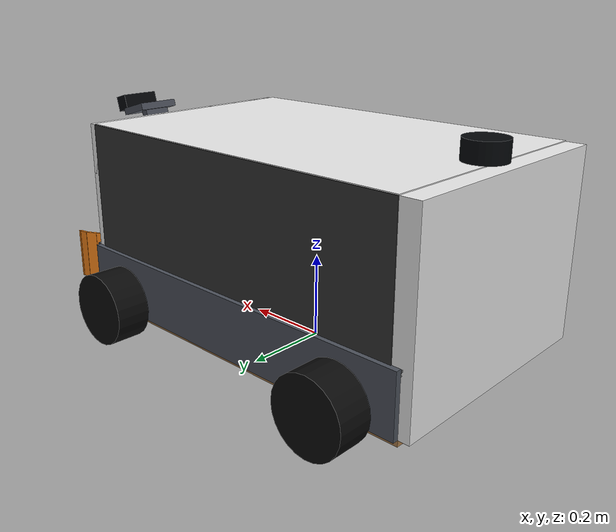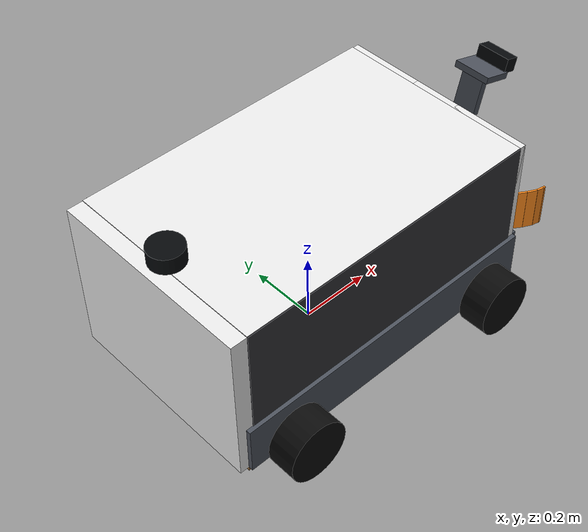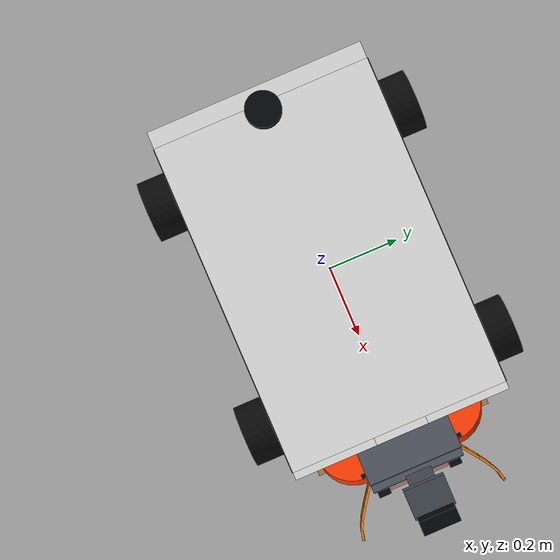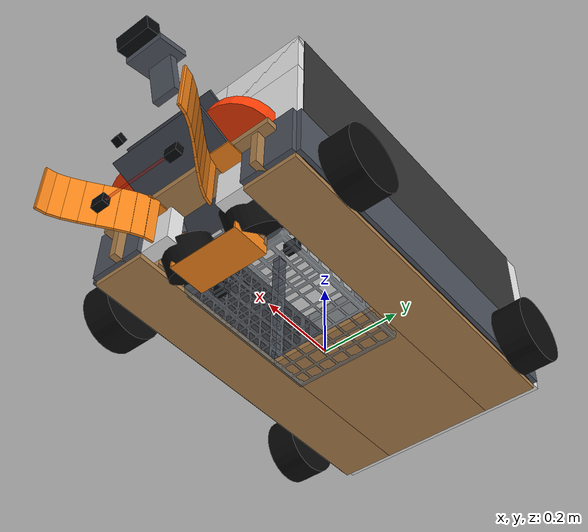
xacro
<?xml version="1.0" encoding="UTF-8"?>
<robot name="tennis_robot" xmlns:xacro="http://www.ros.org/wiki/xacro">
  <xacro:include filename="components/materials.urdf.xacro"/>
  <xacro:include filename="components/base.urdf.xacro"/>
  <xacro:include filename="components/basket.urdf.xacro"/>
  <xacro:include filename="components/battery.urdf.xacro"/>
  <xacro:include filename="components/drivetrain.urdf.xacro"/>
  <xacro:include filename="components/ros2_control.urdf.xacro"/>
  <xacro:include filename="components/lidar.urdf.xacro"/>
  <xacro:include filename="components/oak_d.urdf.xacro"/>
  <xacro:include filename="components/imu.urdf.xacro"/>
  <xacro:include filename="components/ir_beam.urdf.xacro"/>
  <xacro:include filename="components/body_panels.urdf.xacro"/>
  <xacro:include filename="components/intake_debug_camera.urdf.xacro"/>
  <xacro:include filename="components/electronics_packaging.urdf.xacro"/>
  <xacro:include filename="components/flywheel_launcher.urdf.xacro"/>
  <xacro:include filename="components/compact_mechanics.urdf.xacro"/>

  <xacro:arg name="sim_mode" default="true"/>
  <xacro:arg name="controllers_config" default="config/controllers.yaml"/>
  <!-- Packaging overlay of the ONE robot: the compact CAD machine shifts the
       complete functional chain by -100 mm. Injected by
       scripts/generate_robot_urdf.py from scripts/intake_geometry.py. -->
  <xacro:arg name="functional_shift_x" default="-0.100"/>
  <xacro:arg name="intake_cad_alignment_x" default="-0.070"/>
  <xacro:arg name="battery_center_x" default="-0.143"/>
  <xacro:arg name="enable_compact_electronics" default="true"/>
  <!-- ONE robot: the compact CAD machine. The baseline / option-a-* packaging
       variants were archived 2026-08-27; components/archive/ keeps their xacro. -->
  <xacro:arg name="enable_compact_mechanics" default="true"/>
  <xacro:arg name="enable_basket_raised_holders" default="false"/>
  <xacro:arg name="intake_parent_link" default="compact_bridge_link"/>
  <xacro:arg name="enable_intake" default="true"/>
  <xacro:arg name="enable_flywheel" default="true"/>
  <xacro:arg name="flywheel_max_vel" default="320.0"/>
  <xacro:arg name="flywheel_nip_gap" default="0.058"/>
  <xacro:arg name="basket_empty_mass" default="1.012"/>
  <xacro:arg name="basket_payload_mass" default="0.0"/>
  <xacro:arg name="basket_lift_travel" default="0.100"/>
  <xacro:arg name="basket_lift_overtravel" default="0.010"/>
  <xacro:arg name="basket_launch_tilt_rad" default="0.0"/>
  <xacro:arg name="basket_floor_thickness" default="0.006"/>
  <xacro:arg name="basket_cad_support_details" default="true"/>
  <xacro:arg name="intake_wheel_radius" default="0.062"/>
  <xacro:arg name="intake_wheel_width" default="0.073"/>
  <xacro:arg name="intake_wheel_gap" default="0.056"/>
  <xacro:arg name="intake_nip_x" default="0.540"/>
  <xacro:arg name="intake_wheel_tilt_deg" default="35.0"/>
  <xacro:arg name="intake_wheel_max_vel" default="26.3"/>
  <xacro:arg name="intake_wheel_effort" default="1.77"/>
  <!-- Physically unmeasured felt/tread friction. SWEPT bound (0.3/0.6/0.9),
       never a value chosen to make a result pass. -->
  <xacro:arg name="intake_tread_mu" default="0.6"/>
  <!-- Concept Validation Plan gates: Phase 1 = throat only (both false),
       Phase 2 = +funnel, Phase 3 = wheels+ramp, Phase 4 = full intake. -->
  <xacro:arg name="enable_funnel" default="true"/>
  <xacro:arg name="enable_ramp" default="true"/>
  <xacro:arg name="compact_handoff_ramp_mesh"
      default="package://tennis_robot/meshes/option_a_handoff_ramp.stl"/>
  <xacro:arg name="enable_assist" default="false"/>
  <xacro:arg name="enable_conveyor" default="false"/>
  <xacro:arg name="intake_assist_x" default="0.545"/>
  <xacro:arg name="intake_assist_z" default="0.050"/>
  <xacro:arg name="intake_assist_radius" default="0.030"/>
  <xacro:arg name="intake_assist_length" default="0.200"/>
  <xacro:arg name="intake_conveyor_x_bias" default="0.000"/>
  <xacro:arg name="intake_conveyor_z_bias" default="0.000"/>
  <!-- Bin v2 (docs/basket-bin-redesign-spec-el.md): sunken removable bin.
       Ground-frame heights; front edge is pinned to the jump lip (0.425). -->
  <xacro:arg name="basket_floor_front_x" default="0.42"/>
  <xacro:arg name="basket_floor_top_z" default="0.025"/>
  <xacro:arg name="basket_rear_x" default="0.02"/>
  <xacro:arg name="basket_half_width" default="0.14"/>
  <xacro:arg name="basket_wall_top_z" default="0.25"/>
  <xacro:arg name="basket_center_lip_height" default="0.010"/>
  <xacro:arg name="basket_management_run" default="0.14"/>
  <xacro:arg name="basket_management_rise" default="0.010"/>
  <xacro:arg name="basket_receiver_run" default="0.050"/>
  <xacro:arg name="basket_receiver_rise" default="0.005"/>
  <xacro:arg name="basket_hood_rear_overhang" default="0.040"/>
  <xacro:arg name="basket_hood_rear_clearance_z" default="0.120"/>
  <xacro:arg name="basket_hood_front_clearance_z" default="0.135"/>

  <xacro:property name="chassis_x" value="0.92"/>
  <xacro:property name="chassis_y" value="0.58"/>
  <xacro:property name="chassis_z" value="0.014"/>
  <xacro:property name="chassis_mass" value="7.2"/>
  <!-- base_link is the chassis plate centre. The plate top is 52 mm above
       ground, below the 85 mm motor-shaft/wheel-axle centreline. -->
  <xacro:property name="base_link_height" value="0.045"/>
  <xacro:property name="functional_shift_x" value="${float($(arg functional_shift_x))}"/>
  <xacro:property name="intake_cad_alignment_x" value="${float($(arg intake_cad_alignment_x))}"/>

  <xacro:property name="wheel_base_x" value="0.33"/>  <!-- rear at -x, front at +x; wheelbase = 0.66 m -->
  <xacro:property name="wheel_y" value="0.35"/>
  <xacro:property name="wheel_radius" value="0.085"/>  <!-- 170 mm diameter (HPI Dirt Buster Block) -->
  <xacro:property name="wheel_z" value="${wheel_radius - base_link_height}"/>
  <xacro:property name="wheel_width" value="0.08"/>
  <xacro:property name="wheel_mass" value="0.25"/>
  <xacro:property name="wheel_separation" value="${2.0 * wheel_y}"/>
  <xacro:property name="motor_y" value="${chassis_y / 2.0 - 0.05}"/>
  <xacro:property name="motor_radius" value="0.03"/>
  <xacro:property name="motor_length" value="0.10"/>

  <xacro:property name="intake_wheel_radius" value="${float($(arg intake_wheel_radius))}"/>
  <xacro:property name="intake_wheel_gap" value="${float($(arg intake_wheel_gap))}"/>
  <xacro:property name="intake_nip_x" value="${float($(arg intake_nip_x)) + functional_shift_x + intake_cad_alignment_x}"/>
  <xacro:property name="intake_wheel_tilt_rad" value="${float($(arg intake_wheel_tilt_deg)) * 0.017453292519943295}"/>
  <xacro:property name="intake_wheel_max_vel" value="${float($(arg intake_wheel_max_vel))}"/>
  <xacro:property name="intake_wheel_effort" value="${float($(arg intake_wheel_effort))}"/>
  <!-- Wheel centre offset from the corridor centreline. -->
  <xacro:property name="intake_wheel_y" value="${intake_wheel_gap / 2.0 + intake_wheel_radius}"/>
  <xacro:property name="intake_wheel_height" value="${float($(arg intake_wheel_width))}"/>
  <xacro:property name="intake_wheel_z" value="${0.070 - base_link_height}"/>
  <xacro:property name="intake_assist_x" value="${float($(arg intake_assist_x))}"/>
  <xacro:property name="intake_assist_z" value="${float($(arg intake_assist_z))}"/>
  <xacro:property name="intake_assist_radius" value="${float($(arg intake_assist_radius))}"/>
  <xacro:property name="intake_assist_length" value="${float($(arg intake_assist_length))}"/>
  <xacro:property name="intake_conveyor_x_bias" value="${float($(arg intake_conveyor_x_bias))}"/>
  <xacro:property name="intake_conveyor_z_bias" value="${float($(arg intake_conveyor_z_bias))}"/>
  <xacro:property name="intake_conveyor_radius" value="0.025"/>
  <xacro:property name="intake_conveyor_length" value="0.200"/>
  <xacro:property name="scooper_pitch" value="0.1745"/>  <!-- 10 degrees; funnel-cheek tilt -->

  <xacro:property name="lidar_scan_plane_z_ground" value="0.5535"/>
  <xacro:property name="lidar_sensor_scan_offset" value="0.035"/>
  <xacro:property name="lidar_mount_z"
      value="${lidar_scan_plane_z_ground - base_link_height - lidar_sensor_scan_offset}"/>
  <xacro:property name="lidar_xyz" value="-0.42 0 ${lidar_mount_z}"/>
  <xacro:property name="lidar_rpy" value="0 0 0"/>  <!-- level chassis: horizontal scan plane -->
       The literal below is a CAD-frame X: functional_shift_x (-0.100 on the
       compact variant) converts it to base_link. 0.790 IS the CAD
       nose_front_x, so compact lands at base_link 0.690, next to the cheek
       mouth which compact_mechanics hardcodes at base_link 0.705 (CAD 805).
       Writing 0.690 here would double-shift it to 0.590. -->
  <xacro:property name="camera_xyz" value="${0.790 + functional_shift_x} 0 0.443"/>
  <xacro:property name="camera_rpy" value="0 0.273 0"/>  <!-- forward-down tilt ~15.6deg; preserves the old world aim (0.22 cam + 0.053 chassis pitch) now that the chassis is level -->
  <xacro:property name="sensor_update_rate" value="31.25"/>

  <xacro:property name="intake_debug_camera_xyz" value="${0.78 + functional_shift_x} 0 0.06"/>
  <xacro:property name="intake_debug_camera_rpy" value="0 0.339 3.14159"/>

  <xacro:property name="ir_x" value="${0.720 + functional_shift_x}"/>
  <xacro:property name="ir_y" value="0.105"/>
  <xacro:property name="ir_z" value="-0.005"/>
  <xacro:property name="basket_ir_x" value="${float($(arg basket_floor_front_x)) - float($(arg basket_management_run)) / 2.0 + functional_shift_x}"/>
  <xacro:property name="basket_ir_y" value="0.105"/>
  <xacro:property name="basket_ir_z" value="${float($(arg basket_floor_top_z)) + float($(arg basket_management_rise)) / 2.0 + 0.045 - base_link_height}"/>

  <xacro:property name="max_linear_acceleration" value="2.0"/>
  <xacro:property name="max_angular_acceleration" value="4.0"/>

  <xacro:tennis_robot_base
      chassis_x="${chassis_x}"
      chassis_y="${chassis_y}"
      chassis_z="${chassis_z}"
      base_link_height="${base_link_height}"
      chassis_mass="${chassis_mass}"
      entry_beam_x="${ir_x}"
      entry_beam_z="${ir_z}"
      entry_beam_width="${2.0 * ir_y}"/>

  <!-- Motors are fixed to the chassis top. Each shaft shares its x/z centre
       with the corresponding wheel joint; only y differs along the shaft. -->
  <xacro:drive_motor side="rear_left" y="${motor_y}" motor_x="-${wheel_base_x}"
      shaft_z="${wheel_z}" radius="${motor_radius}" length="${motor_length}" mass="0.65"/>
  <xacro:drive_motor side="rear_right" y="-${motor_y}" motor_x="-${wheel_base_x}"
      shaft_z="${wheel_z}" radius="${motor_radius}" length="${motor_length}" mass="0.65"/>
  <xacro:drive_motor side="front_left" y="${motor_y}" motor_x="${wheel_base_x}"
      shaft_z="${wheel_z}" radius="${motor_radius}" length="${motor_length}" mass="0.65"/>
  <xacro:drive_motor side="front_right" y="-${motor_y}" motor_x="${wheel_base_x}"
      shaft_z="${wheel_z}" radius="${motor_radius}" length="${motor_length}" mass="0.65"/>

  <xacro:drive_wheel
      side="rear_left"
      y="${wheel_y}"
      wheel_x="-${wheel_base_x}"
      wheel_z="${wheel_z}"
      radius="${wheel_radius}"
      width="${wheel_width}"
      mass="${wheel_mass}"/>

  <xacro:drive_wheel
      side="rear_right"
      y="-${wheel_y}"
      wheel_x="-${wheel_base_x}"
      wheel_z="${wheel_z}"
      radius="${wheel_radius}"
      width="${wheel_width}"
      mass="${wheel_mass}"/>

  <xacro:drive_wheel
      side="front_left"
      y="${wheel_y}"
      wheel_x="${wheel_base_x}"
      wheel_z="${wheel_z}"
      radius="${wheel_radius}"
      width="${wheel_width}"
      mass="${wheel_mass}"/>

  <xacro:drive_wheel
      side="front_right"
      y="-${wheel_y}"
      wheel_x="${wheel_base_x}"
      wheel_z="${wheel_z}"
      radius="${wheel_radius}"
      width="${wheel_width}"
      mass="${wheel_mass}"/>

  <!-- The compact bridge is the real load path for the intake pods and the
       launcher cradle.  It must exist before those child joints are emitted. -->
  <xacro:if value="$(arg enable_compact_mechanics)">
    <xacro:compact_plywood_bridge parent="base_link" base_link_height="${base_link_height}"/>
    <xacro:compact_basket_fixed_rails parent="base_link"
        x_shift="${functional_shift_x}" base_link_height="${base_link_height}"/>
    <xacro:compact_fixed_entry_hood parent="base_link"
        x_shift="${functional_shift_x}" base_link_height="${base_link_height}"/>
    <xacro:if value="$(arg enable_basket_raised_holders)">
      <xacro:compact_basket_raised_holders parent="base_link"
          x_shift="${functional_shift_x}" base_link_height="${base_link_height}"/>
    </xacro:if>
  </xacro:if>

  <!-- Intake assembly.  In compact it is bridge-mounted and uses the measured
       CAD cheeks/ramp; older study variants retain their historical funnel. -->
  <xacro:if value="$(arg enable_intake)">
    <!-- Left wheel drives ω<0 / right ω>0 (opposite signs, commanded by
         intake_wheel_velocity_controller) so both inner faces move rearward. -->
    <xacro:intake_side_wheel
        side="left"
        y="${intake_wheel_y}"
        nip_x="${intake_nip_x}"
        wheel_z="${intake_wheel_z}"
        tilt_rad="${intake_wheel_tilt_rad}"
        radius="${intake_wheel_radius}"
        height="${intake_wheel_height}"
        max_vel="${intake_wheel_max_vel}"
        effort="${intake_wheel_effort}"
        tread_mu="${float($(arg intake_tread_mu))}"
        mass="0.20"
        parent="$(arg intake_parent_link)"
        sensor_index="0"/>
    <xacro:intake_side_wheel
        side="right"
        y="${-intake_wheel_y}"
        nip_x="${intake_nip_x}"
        wheel_z="${intake_wheel_z}"
        tilt_rad="${intake_wheel_tilt_rad}"
        radius="${intake_wheel_radius}"
        height="${intake_wheel_height}"
        max_vel="${intake_wheel_max_vel}"
        effort="${intake_wheel_effort}"
        tread_mu="${float($(arg intake_tread_mu))}"
        mass="0.20"
        parent="$(arg intake_parent_link)"
        sensor_index="1"/>

    <xacro:if value="$(arg enable_compact_mechanics)">
      <xacro:compact_intake_static_structure parent="compact_bridge_link"
          base_link_height="${base_link_height}"
          enable_cheeks="$(arg enable_funnel)" enable_ramp="$(arg enable_ramp)"
          ramp_mesh="$(arg compact_handoff_ramp_mesh)"/>
    </xacro:if>
</xacro:if>
  <xacro:if value="$(arg enable_assist)">
    <xacro:intake_assist_roller
        parent="base_link"
        x="${intake_assist_x + functional_shift_x}"
        z="${intake_assist_z}"
        radius="${intake_assist_radius}"
        length="${intake_assist_length}"
        mass="0.20"/>
  </xacro:if>
  <xacro:if value="$(arg enable_conveyor)">
    <xacro:intake_ramp_conveyor_roller
        name="intake_conveyor_front"
        parent="base_link"
        x="${0.525 + intake_conveyor_x_bias + functional_shift_x}"
        z="${0.051 + intake_conveyor_z_bias}"
        radius="${intake_conveyor_radius}"
        length="${intake_conveyor_length}"
        mass="0.14"/>
    <xacro:intake_ramp_conveyor_roller
        name="intake_conveyor_mid"
        parent="base_link"
        x="${0.490 + intake_conveyor_x_bias + functional_shift_x}"
        z="${0.067 + intake_conveyor_z_bias}"
        radius="${intake_conveyor_radius}"
        length="${intake_conveyor_length}"
        mass="0.14"/>
    <xacro:intake_ramp_conveyor_roller
        name="intake_conveyor_rear"
        parent="base_link"
        x="${0.455 + intake_conveyor_x_bias + functional_shift_x}"
        z="${0.101 + intake_conveyor_z_bias}"
        radius="${intake_conveyor_radius}"
        length="${intake_conveyor_length}"
        mass="0.14"/>
  </xacro:if>
  <xacro:ball_basket
      parent="base_link"
      floor_front_x="${float($(arg basket_floor_front_x))}"
      floor_top_z_ground="${float($(arg basket_floor_top_z))}"
      rear_x="${float($(arg basket_rear_x))}"
      half_width="${float($(arg basket_half_width))}"
      wall_top_z_ground="${float($(arg basket_wall_top_z))}"
      center_lip_height="${float($(arg basket_center_lip_height))}"
      management_run="${float($(arg basket_management_run))}"
      management_rise="${float($(arg basket_management_rise))}"
      receiver_run="${float($(arg basket_receiver_run))}"
      receiver_rise="${float($(arg basket_receiver_rise))}"
      hood_rear_overhang="${float($(arg basket_hood_rear_overhang))}"
      hood_rear_clearance_z_ground="${float($(arg basket_hood_rear_clearance_z))}"
      hood_front_clearance_z_ground="${float($(arg basket_hood_front_clearance_z))}"
      x_shift="${functional_shift_x}"
      lift_travel="${float($(arg basket_lift_travel))}"
      lift_overtravel="${float($(arg basket_lift_overtravel))}"
      empty_mass="${float($(arg basket_empty_mass))}"
      payload_mass="${float($(arg basket_payload_mass))}"
      launch_tilt_rad="${float($(arg basket_launch_tilt_rad))}"
      floor_thickness="${float($(arg basket_floor_thickness))}"
      cad_support_details="$(arg basket_cad_support_details)"/>
  <xacro:battery_pack parent="base_link"
      center_x="${float($(arg battery_center_x))}"/>

  <xacro:if value="$(arg enable_compact_electronics)">
    <xacro:compact_electronics_packaging
        parent="base_link" base_link_height="${base_link_height}"/>
  </xacro:if>

  <xacro:if value="$(arg enable_flywheel)">
    <xacro:if value="$(arg enable_compact_mechanics)">
      <xacro:compact_cad_flywheel_launcher parent="compact_bridge_link"
          base_link_height="${base_link_height}"
          nip_gap="${float($(arg flywheel_nip_gap))}"
          max_vel="${float($(arg flywheel_max_vel))}"/>
    </xacro:if>
</xacro:if>

  <xacro:rplidar_c1_mount
      parent="base_link"
      link_name="lidar_link"
      xyz="${lidar_xyz}"
      rpy="${lidar_rpy}"
      mount_z="${lidar_mount_z}"
      scan_offset_z="${lidar_sensor_scan_offset}"
      update_rate="${sensor_update_rate}"/>

  <xacro:oak_d_lite_mount
      parent="base_link"
      link_name="camera_link"
      xyz="${camera_xyz}"
      rpy="${camera_rpy}"
      update_rate="${sensor_update_rate}"/>

  <!-- Sim-only: no real-hardware equivalent. -->
  <xacro:if value="$(arg sim_mode)">
    <xacro:intake_debug_camera
        parent="base_link"
        link_name="intake_debug_camera_link"
        xyz="${intake_debug_camera_xyz}"
        rpy="${intake_debug_camera_rpy}"
        update_rate="${sensor_update_rate}"/>
  </xacro:if>

  <!-- MPU6050 IMU near the chassis centre, axes aligned with base_link. Mainly
       used for yaw rate, which wheel odometry mis-estimates in skid-steer. -->
  <xacro:mpu6050_imu
      parent="base_link"
      link_name="imu_link"
      xyz="-0.05 0 0.012"
      rpy="0 0 0"
      update_rate="100"
      topic="/gz/imu"/>

  <xacro:ir_beam_sensor
      parent="base_link"
      link_name="ir_left_link"
      joint_name="ir_left_joint"
      xyz="${ir_x} -${ir_y} ${ir_z}"
      rpy="0 0 1.5708"
      topic="/gz/ir_left"
      update_rate="${sensor_update_rate}"/>
  <xacro:ir_beam_sensor
      parent="base_link"
      link_name="ir_right_link"
      joint_name="ir_right_joint"
      xyz="${ir_x} ${ir_y} ${ir_z}"
      rpy="0 0 -1.5708"
      topic="/gz/ir_right"
      update_rate="${sensor_update_rate}"/>
  <xacro:ir_beam_sensor
      parent="base_link"
      link_name="basket_ir_left_link"
      joint_name="basket_ir_left_joint"
      xyz="${basket_ir_x} -${basket_ir_y} ${basket_ir_z}"
      rpy="0 0 1.5708"
      topic="/gz/basket_ir_left"
      update_rate="${sensor_update_rate}"/>
  <xacro:ir_beam_sensor
      parent="base_link"
      link_name="basket_ir_right_link"
      joint_name="basket_ir_right_joint"
      xyz="${basket_ir_x} ${basket_ir_y} ${basket_ir_z}"
      rpy="0 0 -1.5708"
      topic="/gz/basket_ir_right"
      update_rate="${sensor_update_rate}"/>

  <xacro:tennis_robot_ros2_control
      sim_mode="$(arg sim_mode)"
      controllers_config="$(arg controllers_config)"
      intake_max_vel="${intake_wheel_max_vel}"
      enable_intake="$(arg enable_intake)"
      enable_flywheel="$(arg enable_flywheel)"
      flywheel_max_vel="${float($(arg flywheel_max_vel))}"
      basket_lift_travel="${float($(arg basket_lift_travel))}"
      enable_assist="$(arg enable_assist)"
      enable_conveyor="$(arg enable_conveyor)"/>

  <xacro:robot_body_panels parent="base_link" chassis_z="${chassis_z}"/>
</robot>

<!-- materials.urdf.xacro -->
<robot xmlns:xacro="http://www.ros.org/wiki/xacro">
  <material name="plywood">
    <color rgba="0.68 0.50 0.30 1"/>
  </material>
  <material name="anthracite">
    <color rgba="0.18 0.19 0.22 1"/>
  </material>
  <material name="intake_orange">
    <color rgba="0.96 0.52 0.10 1"/>
  </material>
  <material name="safety_orange">
    <color rgba="1.0 0.24 0.02 1"/>
  </material>
  <material name="mount_gray">
    <color rgba="0.30 0.32 0.36 1"/>
  </material>
  <material name="basket_gray">
    <color rgba="0.42 0.45 0.48 0.65"/>
  </material>
  <material name="rubber_black">
    <color rgba="0.04 0.04 0.04 1"/>
  </material>
  <material name="sensor_black">
    <color rgba="0.02 0.03 0.04 1"/>
  </material>
  <material name="electronics_blue">
    <color rgba="0.08 0.28 0.62 1"/>
  </material>
  <material name="body_dark_grey">
    <color rgba="0.20 0.20 0.22 1"/>
  </material>
  <material name="ir_beam_red">
    <color rgba="1.0 0.05 0.02 0.35"/>
  </material>
</robot>

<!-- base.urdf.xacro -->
<robot xmlns:xacro="http://www.ros.org/wiki/xacro">
  <xacro:macro name="box_inertial" params="mass x y z">
    <inertial>
      <mass value="${mass}"/>
      <inertia
          ixx="${mass * (y*y + z*z) / 12.0}" ixy="0" ixz="0"
          iyy="${mass * (x*x + z*z) / 12.0}" iyz="0"
          izz="${mass * (x*x + y*y) / 12.0}"/>
    </inertial>
  </xacro:macro>

  <xacro:macro name="cylinder_inertial" params="mass radius length axis">
    <inertial>
      <mass value="${mass}"/>
      <xacro:if value="${axis == 'y'}">
        <inertia
            ixx="${mass * (3.0 * radius * radius + length * length) / 12.0}" ixy="0" ixz="0"
            iyy="${0.5 * mass * radius * radius}" iyz="0"
            izz="${mass * (3.0 * radius * radius + length * length) / 12.0}"/>
      </xacro:if>
      <xacro:unless value="${axis == 'y'}">
        <inertia
            ixx="${mass * (3.0 * radius * radius + length * length) / 12.0}" ixy="0" ixz="0"
            iyy="${mass * (3.0 * radius * radius + length * length) / 12.0}" iyz="0"
            izz="${0.5 * mass * radius * radius}"/>
      </xacro:unless>
    </inertial>
  </xacro:macro>

  <xacro:macro name="tennis_robot_base"
               params="chassis_x chassis_y chassis_z base_link_height chassis_mass entry_beam_x entry_beam_z entry_beam_width">
    <link name="base_footprint"/>

    <joint name="base_footprint_joint" type="fixed">
      <parent link="base_footprint"/>
      <child link="base_link"/>
      <!-- base_footprint is the ground plane. base_link is the centre of the
           chassis plate, deliberately below the motor/axle centreline. -->
      <origin xyz="0 0 ${base_link_height}" rpy="0 0 0"/>
    </joint>

    <link name="base_link">
      <xacro:box_inertial mass="${chassis_mass}" x="${chassis_x}" y="${chassis_y}" z="${chassis_z}"/>
      <collision name="chassis_left_col">
        <origin xyz="0 0.22 0" rpy="0 0 0"/>
        <geometry><box size="${chassis_x} 0.14 ${chassis_z}"/></geometry>
      </collision>
      <collision name="chassis_right_col">
        <origin xyz="0 -0.22 0" rpy="0 0 0"/>
        <geometry><box size="${chassis_x} 0.14 ${chassis_z}"/></geometry>
      </collision>
      <collision name="chassis_rear_col">
        <origin xyz="-0.225 0 0" rpy="0 0 0"/>
        <geometry><box size="0.47 0.30 ${chassis_z}"/></geometry>
      </collision>
      <visual name="chassis_left_vis">
        <origin xyz="0 0.22 0" rpy="0 0 0"/>
        <geometry><box size="${chassis_x} 0.14 ${chassis_z}"/></geometry>
        <material name="plywood"/>
      </visual>
      <visual name="chassis_right_vis">
        <origin xyz="0 -0.22 0" rpy="0 0 0"/>
        <geometry><box size="${chassis_x} 0.14 ${chassis_z}"/></geometry>
        <material name="plywood"/>
      </visual>
      <visual name="chassis_rear_vis">
        <origin xyz="-0.225 0 0" rpy="0 0 0"/>
        <geometry><box size="0.47 0.30 ${chassis_z}"/></geometry>
        <material name="plywood"/>
      </visual>

      <visual name="front_left_cheek_vis">
        <origin xyz="${chassis_x / 2.0} ${0.30 / 2.0 + (chassis_y - 0.30) / 4.0} 0.077" rpy="0 0 0"/>
        <geometry><box size="0.025 ${(chassis_y - 0.30) / 2.0} 0.14"/></geometry>
        <material name="mount_gray"/>
      </visual>
      <visual name="front_right_cheek_vis">
        <origin xyz="${chassis_x / 2.0} ${-(0.30 / 2.0 + (chassis_y - 0.30) / 4.0)} 0.077" rpy="0 0 0"/>
        <geometry><box size="0.025 ${(chassis_y - 0.30) / 2.0} 0.14"/></geometry>
        <material name="mount_gray"/>
      </visual>
      <visual name="rear_wall_vis">
        <origin xyz="${-chassis_x / 2.0} 0 0.077" rpy="0 0 0"/>
        <geometry><box size="0.025 ${chassis_y} 0.14"/></geometry>
        <material name="mount_gray"/>
      </visual>
      <visual name="left_wall_vis">
        <origin xyz="0 ${chassis_y / 2.0} 0.077" rpy="0 0 0"/>
        <geometry><box size="${chassis_x} 0.025 0.14"/></geometry>
        <material name="mount_gray"/>
      </visual>
      <visual name="right_wall_vis">
        <origin xyz="0 ${-chassis_y / 2.0} 0.077" rpy="0 0 0"/>
        <geometry><box size="${chassis_x} 0.025 0.14"/></geometry>
        <material name="mount_gray"/>
      </visual>
      <visual name="rear_left_axle_bracket_vis">
        <origin xyz="-0.33 0.24 ${0.5 * chassis_z + 0.009}" rpy="0 0 0"/>
        <geometry><box size="0.065 0.060 0.018"/></geometry>
        <material name="mount_gray"/>
      </visual>
      <visual name="rear_right_axle_bracket_vis">
        <origin xyz="-0.33 -0.24 ${0.5 * chassis_z + 0.009}" rpy="0 0 0"/>
        <geometry><box size="0.065 0.060 0.018"/></geometry>
        <material name="mount_gray"/>
      </visual>
      <visual name="front_left_axle_bracket_vis">
        <origin xyz="0.33 0.24 ${0.5 * chassis_z + 0.009}" rpy="0 0 0"/>
        <geometry><box size="0.065 0.060 0.018"/></geometry>
        <material name="mount_gray"/>
      </visual>
      <visual name="front_right_axle_bracket_vis">
        <origin xyz="0.33 -0.24 ${0.5 * chassis_z + 0.009}" rpy="0 0 0"/>
        <geometry><box size="0.065 0.060 0.018"/></geometry>
        <material name="mount_gray"/>
      </visual>
      <visual name="elec_vis">
        <origin xyz="-0.36 0 0.067" rpy="0 0 0"/>
        <geometry><box size="0.18 0.26 0.12"/></geometry>
        <material name="anthracite"/>
      </visual>
      <visual name="ir_beam_line_vis">
        <origin xyz="${entry_beam_x} 0 ${entry_beam_z}" rpy="1.5708 0 0"/>
        <geometry><cylinder radius="0.003" length="${entry_beam_width}"/></geometry>
        <material name="ir_beam_red"/>
      </visual>
    </link>

    <gazebo reference="base_link">
      <material>Gazebo/Wood</material>
    </gazebo>
  </xacro:macro>
</robot>

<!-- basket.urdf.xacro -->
<robot xmlns:xacro="http://www.ros.org/wiki/xacro">
  <xacro:macro name="basket_wire" params="name xyz size">
    <visual name="${name}">
      <origin xyz="${xyz}" rpy="0 0 0"/>
      <geometry><box size="${size}"/></geometry>
      <material name="basket_gray"/>
    </visual>
  </xacro:macro>

  <xacro:macro name="basket_wire_rotated" params="name xyz rpy size">
    <visual name="${name}">
      <origin xyz="${xyz}" rpy="${rpy}"/>
      <geometry><box size="${size}"/></geometry>
      <material name="basket_gray"/>
    </visual>
  </xacro:macro>

  <xacro:macro name="ball_basket"
      params="parent floor_front_x floor_top_z_ground rear_x half_width wall_top_z_ground center_lip_height management_run management_rise receiver_run receiver_rise hood_rear_overhang hood_rear_clearance_z_ground hood_front_clearance_z_ground x_shift:=0.0 lift_travel:=0.100 lift_overtravel:=0.010 empty_mass:=0.01 payload_mass:=0.0 launch_tilt_rad:=0.0 launch_pivot_x:=0.470 launch_pivot_z_ground:=0.040 floor_thickness:=0.005 cad_support_details:=false">
    <xacro:property name="floor_top" value="${floor_top_z_ground - base_link_height}"/>
    <xacro:property name="wall_top" value="${wall_top_z_ground - base_link_height}"/>
    <!-- Thin skinned bin: 5 mm floor (exterior bottom = floor_top - 0.005,
         the robot's lowest point), 10 mm wall frames. -->
    <xacro:property name="wall_thickness" value="0.010"/>
    <xacro:property name="bin_length" value="${floor_front_x - rear_x}"/>
    <xacro:property name="wall_height" value="${wall_top - floor_top}"/>
    <xacro:property name="wall_centre_z" value="${(wall_top + floor_top) / 2.0}"/>
    <xacro:property name="entry_half_width" value="0.090"/>
    <xacro:property name="front_guard_width" value="${half_width - entry_half_width}"/>
    <xacro:property name="front_guard_height" value="0.020"/>
    <xacro:property name="front_guard_centre_z" value="${floor_top + front_guard_height / 2.0}"/>
    <xacro:property name="management_rear_x" value="${floor_front_x - management_run}"/>
    <xacro:property name="management_pitch" value="${-atan2(management_rise, management_run)}"/>
    <xacro:property name="management_length" value="${sqrt(management_run * management_run + management_rise * management_rise)}"/>
    <xacro:property name="management_top_mid_x" value="${(floor_front_x + management_rear_x) / 2.0}"/>
    <xacro:property name="management_top_mid_z" value="${floor_top + management_rise / 2.0}"/>
    <xacro:property name="management_centre_x" value="${management_top_mid_x - sin(management_pitch) * floor_thickness / 2.0}"/>
    <xacro:property name="management_centre_z" value="${management_top_mid_z - cos(management_pitch) * floor_thickness / 2.0}"/>
    <!-- A narrow front receiver continues the management tray toward the
         wheel pair. The ball crosses a short free-flight gap, lands on this
         surface, then rolls rearward into the main bin. -->
    <xacro:property name="receiver_rear_top_z" value="${floor_top + management_rise}"/>
    <xacro:property name="receiver_front_x" value="${floor_front_x + receiver_run}"/>
    <xacro:property name="receiver_pitch" value="${-atan2(receiver_rise, receiver_run)}"/>
    <xacro:property name="receiver_length" value="${sqrt(receiver_run * receiver_run + receiver_rise * receiver_rise)}"/>
    <xacro:property name="receiver_top_mid_x" value="${floor_front_x + receiver_run / 2.0}"/>
    <xacro:property name="receiver_top_mid_z" value="${receiver_rear_top_z + receiver_rise / 2.0}"/>
    <xacro:property name="receiver_centre_x" value="${receiver_top_mid_x - sin(receiver_pitch) * floor_thickness / 2.0}"/>
    <xacro:property name="receiver_centre_z" value="${receiver_top_mid_z - cos(receiver_pitch) * floor_thickness / 2.0}"/>
    <xacro:property name="receiver_half_width" value="${entry_half_width}"/>
    <xacro:property name="confirmation_beam_x" value="${management_top_mid_x}"/>
    <!-- Matches basket_ir_z in tennis_robot.urdf.xacro: above court-ball top
         (0.066) so the beam cannot see ground balls through the mesh. -->
    <xacro:property name="confirmation_beam_z" value="${management_top_mid_z + 0.045}"/>
    <xacro:property name="hood_rear_x" value="${floor_front_x - hood_rear_overhang}"/>
    <xacro:property name="hood_run" value="${receiver_front_x - hood_rear_x}"/>
    <xacro:property name="hood_rise" value="${hood_front_clearance_z_ground - hood_rear_clearance_z_ground}"/>
    <xacro:property name="hood_pitch" value="${-atan2(hood_rise, hood_run)}"/>
    <xacro:property name="hood_length" value="${sqrt(hood_run * hood_run + hood_rise * hood_rise)}"/>
    <xacro:property name="hood_under_mid_x" value="${(hood_rear_x + receiver_front_x) / 2.0}"/>
    <xacro:property name="hood_under_mid_z" value="${(hood_rear_clearance_z_ground + hood_front_clearance_z_ground) / 2.0 - base_link_height}"/>
    <xacro:property name="hood_centre_x" value="${hood_under_mid_x + sin(hood_pitch) * floor_thickness / 2.0}"/>
    <xacro:property name="hood_centre_z" value="${hood_under_mid_z + cos(hood_pitch) * floor_thickness / 2.0}"/>
    <xacro:property name="hood_side_top_z" value="${hood_rear_clearance_z_ground - base_link_height + hood_rise * (receiver_top_mid_x - hood_rear_x) / hood_run}"/>
    <xacro:property name="hood_side_mid_z" value="${(receiver_top_mid_z + hood_side_top_z) / 2.0}"/>
    <xacro:property name="hood_side_height" value="${hood_side_top_z - receiver_top_mid_z}"/>
    <xacro:property name="basket_mass" value="${empty_mass + payload_mass}"/>
    <xacro:property name="basket_com_x" value="${0.209460 if cad_support_details else (floor_front_x + rear_x) / 2.0}"/>
    <xacro:property name="basket_com_z" value="${0.091481 - base_link_height if cad_support_details else floor_top + 0.45 * wall_height}"/>
    <joint name="basket_joint" type="prismatic">
      <parent link="${parent}"/>
      <child link="basket_guide_path_link"/>
      <origin xyz="${x_shift} 0 0" rpy="0 0 0"/>
      <axis xyz="0 0 1"/>
      <limit lower="${-lift_overtravel}" upper="${lift_travel}" effort="120.0" velocity="0.12"/>
      <dynamics damping="1.0" friction="0.0"/>
    </joint>
    <link name="basket_guide_path_link"/>
    <joint name="basket_launch_pose_joint" type="fixed">
      <parent link="basket_guide_path_link"/>
      <child link="basket_link"/>
      <!-- T(pivot) * R_y(tilt) * T(-pivot), collapsed into one URDF origin
           so the entire basket rotates about the CAD pivot without a massless
           intermediary physical link. -->
      <origin xyz="${launch_pivot_x - (cos(launch_tilt_rad) * launch_pivot_x + sin(launch_tilt_rad) * (launch_pivot_z_ground - base_link_height))} 0 ${launch_pivot_z_ground - base_link_height - (-sin(launch_tilt_rad) * launch_pivot_x + cos(launch_tilt_rad) * (launch_pivot_z_ground - base_link_height))}"
              rpy="0 ${launch_tilt_rad} 0"/>
    </joint>
    <link name="basket_link">
      <inertial>
        <origin xyz="${basket_com_x} 0 ${basket_com_z}" rpy="0 0 0"/>
        <mass value="${basket_mass}"/>
        <inertia
            ixx="${basket_mass * ((2.0 * half_width) * (2.0 * half_width) + wall_height * wall_height) / 12.0}"
            ixy="0" ixz="0"
            iyy="${basket_mass * (bin_length * bin_length + wall_height * wall_height) / 12.0}"
            iyz="0"
            izz="${basket_mass * (bin_length * bin_length + (2.0 * half_width) * (2.0 * half_width)) / 12.0}"/>
      </inertial>

      <xacro:if value="${cad_support_details}">
        <collision name="compact_relieved_bin_col">
          <origin xyz="0 0 ${-base_link_height}" rpy="0 0 0"/>
          <geometry><mesh filename="package://tennis_robot/meshes/compact_relieved_bin.stl" scale="0.001 0.001 0.001"/></geometry>
        </collision>
        <visual name="compact_relieved_bin_vis">
          <origin xyz="0 0 ${-base_link_height}" rpy="0 0 0"/>
          <geometry><mesh filename="package://tennis_robot/meshes/compact_relieved_bin.stl" scale="0.001 0.001 0.001"/></geometry>
          <material name="basket_gray"/>
        </visual>
      </xacro:if>
      <xacro:unless value="${cad_support_details}">
      <collision name="basket_floor_col">
        <origin xyz="${(floor_front_x + rear_x) / 2.0} 0 ${floor_top - floor_thickness / 2.0}" rpy="0 0 0"/>
        <geometry><box size="${bin_length} ${2.0 * half_width} ${floor_thickness}"/></geometry>
      </collision>
      <!-- Visuals are an open 40 mm wire grid like a tennis training hopper.
           Physics keeps a continuous collision envelope because the 66 mm
           ball cannot pass through the grid openings. -->
      <xacro:basket_wire name="basket_floor_long_m12" xyz="${(floor_front_x + rear_x) / 2.0} -0.12 ${floor_top}" size="${bin_length} 0.004 0.004"/>
      <xacro:basket_wire name="basket_floor_long_m08" xyz="${(floor_front_x + rear_x) / 2.0} -0.08 ${floor_top}" size="${bin_length} 0.004 0.004"/>
      <xacro:basket_wire name="basket_floor_long_m04" xyz="${(floor_front_x + rear_x) / 2.0} -0.04 ${floor_top}" size="${bin_length} 0.004 0.004"/>
      <xacro:basket_wire name="basket_floor_long_000" xyz="${(floor_front_x + rear_x) / 2.0} 0 ${floor_top}" size="${bin_length} 0.004 0.004"/>
      <xacro:basket_wire name="basket_floor_long_p04" xyz="${(floor_front_x + rear_x) / 2.0} 0.04 ${floor_top}" size="${bin_length} 0.004 0.004"/>
      <xacro:basket_wire name="basket_floor_long_p08" xyz="${(floor_front_x + rear_x) / 2.0} 0.08 ${floor_top}" size="${bin_length} 0.004 0.004"/>
      <xacro:basket_wire name="basket_floor_long_p12" xyz="${(floor_front_x + rear_x) / 2.0} 0.12 ${floor_top}" size="${bin_length} 0.004 0.004"/>
      <xacro:basket_wire name="basket_floor_cross_02" xyz="0.02 0 ${floor_top}" size="0.004 ${2.0 * half_width} 0.004"/>
      <xacro:basket_wire name="basket_floor_cross_06" xyz="0.06 0 ${floor_top}" size="0.004 ${2.0 * half_width} 0.004"/>
      <xacro:basket_wire name="basket_floor_cross_10" xyz="0.10 0 ${floor_top}" size="0.004 ${2.0 * half_width} 0.004"/>
      <xacro:basket_wire name="basket_floor_cross_14" xyz="0.14 0 ${floor_top}" size="0.004 ${2.0 * half_width} 0.004"/>
      <xacro:basket_wire name="basket_floor_cross_18" xyz="0.18 0 ${floor_top}" size="0.004 ${2.0 * half_width} 0.004"/>
      <xacro:basket_wire name="basket_floor_cross_22" xyz="0.22 0 ${floor_top}" size="0.004 ${2.0 * half_width} 0.004"/>
      <xacro:basket_wire name="basket_floor_cross_26" xyz="0.26 0 ${floor_top}" size="0.004 ${2.0 * half_width} 0.004"/>
      <xacro:basket_wire name="basket_floor_cross_30" xyz="0.30 0 ${floor_top}" size="0.004 ${2.0 * half_width} 0.004"/>
      <xacro:basket_wire name="basket_floor_cross_34" xyz="0.34 0 ${floor_top}" size="0.004 ${2.0 * half_width} 0.004"/>
      <xacro:basket_wire name="basket_floor_cross_38" xyz="0.38 0 ${floor_top}" size="0.004 ${2.0 * half_width} 0.004"/>
      <xacro:basket_wire name="basket_floor_cross_42" xyz="0.42 0 ${floor_top}" size="0.004 ${2.0 * half_width} 0.004"/>

      <xacro:if value="${management_rise > 0.0}">
        <collision name="basket_management_tray_col">
          <origin xyz="${management_centre_x} 0 ${management_centre_z}" rpy="0 ${management_pitch} 0"/>
          <geometry><box size="${management_length} ${2.0 * half_width} ${floor_thickness}"/></geometry>
        </collision>
        <xacro:basket_wire_rotated name="basket_management_long_m12" xyz="${management_top_mid_x} -0.12 ${management_top_mid_z}" rpy="0 ${management_pitch} 0" size="${management_length} 0.004 0.004"/>
        <xacro:basket_wire_rotated name="basket_management_long_m08" xyz="${management_top_mid_x} -0.08 ${management_top_mid_z}" rpy="0 ${management_pitch} 0" size="${management_length} 0.004 0.004"/>
        <xacro:basket_wire_rotated name="basket_management_long_m04" xyz="${management_top_mid_x} -0.04 ${management_top_mid_z}" rpy="0 ${management_pitch} 0" size="${management_length} 0.004 0.004"/>
        <xacro:basket_wire_rotated name="basket_management_long_000" xyz="${management_top_mid_x} 0 ${management_top_mid_z}" rpy="0 ${management_pitch} 0" size="${management_length} 0.004 0.004"/>
        <xacro:basket_wire_rotated name="basket_management_long_p04" xyz="${management_top_mid_x} 0.04 ${management_top_mid_z}" rpy="0 ${management_pitch} 0" size="${management_length} 0.004 0.004"/>
        <xacro:basket_wire_rotated name="basket_management_long_p08" xyz="${management_top_mid_x} 0.08 ${management_top_mid_z}" rpy="0 ${management_pitch} 0" size="${management_length} 0.004 0.004"/>
        <xacro:basket_wire_rotated name="basket_management_long_p12" xyz="${management_top_mid_x} 0.12 ${management_top_mid_z}" rpy="0 ${management_pitch} 0" size="${management_length} 0.004 0.004"/>
        <xacro:basket_wire name="basket_management_cross_28" xyz="${management_rear_x} 0 ${floor_top}" size="0.004 ${2.0 * half_width} 0.004"/>
        <xacro:basket_wire name="basket_management_cross_32" xyz="${management_rear_x + management_run * 2.0 / 7.0} 0 ${floor_top + management_rise * 2.0 / 7.0}" size="0.004 ${2.0 * half_width} 0.004"/>
        <xacro:basket_wire name="basket_management_cross_36" xyz="${management_rear_x + management_run * 4.0 / 7.0} 0 ${floor_top + management_rise * 4.0 / 7.0}" size="0.004 ${2.0 * half_width} 0.004"/>
        <xacro:basket_wire name="basket_management_cross_40" xyz="${management_rear_x + management_run * 6.0 / 7.0} 0 ${floor_top + management_rise * 6.0 / 7.0}" size="0.004 ${2.0 * half_width} 0.004"/>
        <xacro:basket_wire name="basket_management_cross_42" xyz="${floor_front_x} 0 ${floor_top + management_rise}" size="0.004 ${2.0 * half_width} 0.004"/>
      </xacro:if>

      <xacro:if value="${receiver_run > 0.0}">
        <collision name="basket_receiving_chute_col">
          <origin xyz="${receiver_centre_x} 0 ${receiver_centre_z}" rpy="0 ${receiver_pitch} 0"/>
          <geometry><box size="${receiver_length} ${2.0 * receiver_half_width} ${floor_thickness}"/></geometry>
        </collision>
        <xacro:basket_wire_rotated name="basket_receiver_long_m08" xyz="${receiver_top_mid_x} -0.08 ${receiver_top_mid_z}" rpy="0 ${receiver_pitch} 0" size="${receiver_length} 0.004 0.004"/>
        <xacro:basket_wire_rotated name="basket_receiver_long_m04" xyz="${receiver_top_mid_x} -0.04 ${receiver_top_mid_z}" rpy="0 ${receiver_pitch} 0" size="${receiver_length} 0.004 0.004"/>
        <xacro:basket_wire_rotated name="basket_receiver_long_000" xyz="${receiver_top_mid_x} 0 ${receiver_top_mid_z}" rpy="0 ${receiver_pitch} 0" size="${receiver_length} 0.004 0.004"/>
        <xacro:basket_wire_rotated name="basket_receiver_long_p04" xyz="${receiver_top_mid_x} 0.04 ${receiver_top_mid_z}" rpy="0 ${receiver_pitch} 0" size="${receiver_length} 0.004 0.004"/>
        <xacro:basket_wire_rotated name="basket_receiver_long_p08" xyz="${receiver_top_mid_x} 0.08 ${receiver_top_mid_z}" rpy="0 ${receiver_pitch} 0" size="${receiver_length} 0.004 0.004"/>
        <xacro:basket_wire name="basket_receiver_cross_rear" xyz="${floor_front_x} 0 ${receiver_rear_top_z}" size="0.004 ${2.0 * receiver_half_width} 0.004"/>
        <xacro:basket_wire name="basket_receiver_cross_mid" xyz="${receiver_top_mid_x} 0 ${receiver_top_mid_z}" size="0.004 ${2.0 * receiver_half_width} 0.004"/>
        <xacro:basket_wire name="basket_receiver_cross_front" xyz="${receiver_front_x} 0 ${receiver_rear_top_z + receiver_rise}" size="0.004 ${2.0 * receiver_half_width} 0.004"/>
      </xacro:if>

      <xacro:if value="${hood_rear_overhang > 0.0}">
        <collision name="basket_entry_hood_roof_col">
          <origin xyz="${hood_centre_x} 0 ${hood_centre_z}" rpy="0 ${hood_pitch} 0"/>
          <geometry><box size="${hood_length} ${2.0 * receiver_half_width} ${floor_thickness}"/></geometry>
        </collision>
        <collision name="basket_entry_hood_left_cheek_col">
          <origin xyz="${receiver_top_mid_x} ${receiver_half_width + floor_thickness / 2.0} ${hood_side_mid_z}" rpy="0 0 0"/>
          <geometry><box size="${receiver_run} ${floor_thickness} ${hood_side_height}"/></geometry>
        </collision>
        <collision name="basket_entry_hood_right_cheek_col">
          <origin xyz="${receiver_top_mid_x} ${-(receiver_half_width + floor_thickness / 2.0)} ${hood_side_mid_z}" rpy="0 0 0"/>
          <geometry><box size="${receiver_run} ${floor_thickness} ${hood_side_height}"/></geometry>
        </collision>
        <xacro:basket_wire_rotated name="basket_hood_roof_long_m08" xyz="${hood_under_mid_x} -0.08 ${hood_under_mid_z}" rpy="0 ${hood_pitch} 0" size="${hood_length} 0.004 0.004"/>
        <xacro:basket_wire_rotated name="basket_hood_roof_long_m04" xyz="${hood_under_mid_x} -0.04 ${hood_under_mid_z}" rpy="0 ${hood_pitch} 0" size="${hood_length} 0.004 0.004"/>
        <xacro:basket_wire_rotated name="basket_hood_roof_long_000" xyz="${hood_under_mid_x} 0 ${hood_under_mid_z}" rpy="0 ${hood_pitch} 0" size="${hood_length} 0.004 0.004"/>
        <xacro:basket_wire_rotated name="basket_hood_roof_long_p04" xyz="${hood_under_mid_x} 0.04 ${hood_under_mid_z}" rpy="0 ${hood_pitch} 0" size="${hood_length} 0.004 0.004"/>
        <xacro:basket_wire_rotated name="basket_hood_roof_long_p08" xyz="${hood_under_mid_x} 0.08 ${hood_under_mid_z}" rpy="0 ${hood_pitch} 0" size="${hood_length} 0.004 0.004"/>
        <xacro:basket_wire name="basket_hood_roof_cross_rear" xyz="${hood_rear_x} 0 ${hood_rear_clearance_z_ground - base_link_height}" size="0.004 ${2.0 * receiver_half_width} 0.004"/>
        <xacro:basket_wire name="basket_hood_roof_cross_mid" xyz="${hood_under_mid_x} 0 ${hood_under_mid_z}" size="0.004 ${2.0 * receiver_half_width} 0.004"/>
        <xacro:basket_wire name="basket_hood_roof_cross_front" xyz="${receiver_front_x} 0 ${hood_front_clearance_z_ground - base_link_height}" size="0.004 ${2.0 * receiver_half_width} 0.004"/>
        <xacro:basket_wire name="basket_hood_left_cheek_top" xyz="${receiver_top_mid_x} ${receiver_half_width} ${hood_side_top_z}" size="${receiver_run} 0.004 0.004"/>
        <xacro:basket_wire name="basket_hood_right_cheek_top" xyz="${receiver_top_mid_x} ${-receiver_half_width} ${hood_side_top_z}" size="${receiver_run} 0.004 0.004"/>
      </xacro:if>

      <!-- Side walls run the full bin length from floor to rim. -->
      <collision name="basket_left_wall_col">
        <origin xyz="${(floor_front_x + rear_x) / 2.0} ${half_width + wall_thickness / 2.0} ${wall_centre_z}" rpy="0 0 0"/>
        <geometry><box size="${bin_length} ${wall_thickness} ${wall_height}"/></geometry>
      </collision>

      <collision name="basket_right_wall_col">
        <origin xyz="${(floor_front_x + rear_x) / 2.0} ${-(half_width + wall_thickness / 2.0)} ${wall_centre_z}" rpy="0 0 0"/>
        <geometry><box size="${bin_length} ${wall_thickness} ${wall_height}"/></geometry>
      </collision>
      <!-- Side-wall grid: horizontal wires plus vertical uprights. -->
      <xacro:basket_wire name="basket_side_l_h1" xyz="${(floor_front_x + rear_x) / 2.0} ${half_width} ${floor_top + 0.04}" size="${bin_length} 0.004 0.004"/>
      <xacro:basket_wire name="basket_side_l_h2" xyz="${(floor_front_x + rear_x) / 2.0} ${half_width} ${floor_top + 0.08}" size="${bin_length} 0.004 0.004"/>
      <xacro:basket_wire name="basket_side_l_h3" xyz="${(floor_front_x + rear_x) / 2.0} ${half_width} ${floor_top + 0.12}" size="${bin_length} 0.004 0.004"/>
      <xacro:basket_wire name="basket_side_l_h4" xyz="${(floor_front_x + rear_x) / 2.0} ${half_width} ${floor_top + 0.16}" size="${bin_length} 0.004 0.004"/>
      <xacro:basket_wire name="basket_side_l_h5" xyz="${(floor_front_x + rear_x) / 2.0} ${half_width} ${wall_top}" size="${bin_length} 0.004 0.004"/>
      <xacro:basket_wire name="basket_side_r_h1" xyz="${(floor_front_x + rear_x) / 2.0} ${-half_width} ${floor_top + 0.04}" size="${bin_length} 0.004 0.004"/>
      <xacro:basket_wire name="basket_side_r_h2" xyz="${(floor_front_x + rear_x) / 2.0} ${-half_width} ${floor_top + 0.08}" size="${bin_length} 0.004 0.004"/>
      <xacro:basket_wire name="basket_side_r_h3" xyz="${(floor_front_x + rear_x) / 2.0} ${-half_width} ${floor_top + 0.12}" size="${bin_length} 0.004 0.004"/>
      <xacro:basket_wire name="basket_side_r_h4" xyz="${(floor_front_x + rear_x) / 2.0} ${-half_width} ${floor_top + 0.16}" size="${bin_length} 0.004 0.004"/>
      <xacro:basket_wire name="basket_side_r_h5" xyz="${(floor_front_x + rear_x) / 2.0} ${-half_width} ${wall_top}" size="${bin_length} 0.004 0.004"/>
      <xacro:basket_wire name="basket_side_l_v1" xyz="0.02 ${half_width} ${wall_centre_z}" size="0.004 0.004 ${wall_height}"/>
      <xacro:basket_wire name="basket_side_l_v2" xyz="0.10 ${half_width} ${wall_centre_z}" size="0.004 0.004 ${wall_height}"/>
      <xacro:basket_wire name="basket_side_l_v3" xyz="0.18 ${half_width} ${wall_centre_z}" size="0.004 0.004 ${wall_height}"/>
      <xacro:basket_wire name="basket_side_l_v4" xyz="0.26 ${half_width} ${wall_centre_z}" size="0.004 0.004 ${wall_height}"/>
      <xacro:basket_wire name="basket_side_l_v5" xyz="0.34 ${half_width} ${wall_centre_z}" size="0.004 0.004 ${wall_height}"/>
      <xacro:basket_wire name="basket_side_l_v6" xyz="0.42 ${half_width} ${wall_centre_z}" size="0.004 0.004 ${wall_height}"/>
      <xacro:basket_wire name="basket_side_r_v1" xyz="0.02 ${-half_width} ${wall_centre_z}" size="0.004 0.004 ${wall_height}"/>
      <xacro:basket_wire name="basket_side_r_v2" xyz="0.10 ${-half_width} ${wall_centre_z}" size="0.004 0.004 ${wall_height}"/>
      <xacro:basket_wire name="basket_side_r_v3" xyz="0.18 ${-half_width} ${wall_centre_z}" size="0.004 0.004 ${wall_height}"/>
      <xacro:basket_wire name="basket_side_r_v4" xyz="0.26 ${-half_width} ${wall_centre_z}" size="0.004 0.004 ${wall_height}"/>
      <xacro:basket_wire name="basket_side_r_v5" xyz="0.34 ${-half_width} ${wall_centre_z}" size="0.004 0.004 ${wall_height}"/>
      <xacro:basket_wire name="basket_side_r_v6" xyz="0.42 ${-half_width} ${wall_centre_z}" size="0.004 0.004 ${wall_height}"/>

      <collision name="basket_rear_wall_col">
        <origin xyz="${rear_x - wall_thickness / 2.0} 0 ${wall_centre_z}" rpy="0 0 0"/>
        <geometry><box size="${wall_thickness} ${2.0 * (half_width + wall_thickness)} ${wall_height}"/></geometry>
      </collision>
      <xacro:basket_wire name="basket_rear_h1" xyz="${rear_x} 0 ${floor_top + 0.04}" size="0.004 ${2.0 * half_width} 0.004"/>
      <xacro:basket_wire name="basket_rear_h2" xyz="${rear_x} 0 ${floor_top + 0.08}" size="0.004 ${2.0 * half_width} 0.004"/>
      <xacro:basket_wire name="basket_rear_h3" xyz="${rear_x} 0 ${floor_top + 0.12}" size="0.004 ${2.0 * half_width} 0.004"/>
      <xacro:basket_wire name="basket_rear_h4" xyz="${rear_x} 0 ${floor_top + 0.16}" size="0.004 ${2.0 * half_width} 0.004"/>
      <xacro:basket_wire name="basket_rear_h5" xyz="${rear_x} 0 ${wall_top}" size="0.004 ${2.0 * half_width} 0.004"/>
      <xacro:basket_wire name="basket_rear_vm12" xyz="${rear_x} -0.12 ${wall_centre_z}" size="0.004 0.004 ${wall_height}"/>
      <xacro:basket_wire name="basket_rear_vm08" xyz="${rear_x} -0.08 ${wall_centre_z}" size="0.004 0.004 ${wall_height}"/>
      <xacro:basket_wire name="basket_rear_vm04" xyz="${rear_x} -0.04 ${wall_centre_z}" size="0.004 0.004 ${wall_height}"/>
      <xacro:basket_wire name="basket_rear_v000" xyz="${rear_x} 0 ${wall_centre_z}" size="0.004 0.004 ${wall_height}"/>
      <xacro:basket_wire name="basket_rear_vp04" xyz="${rear_x} 0.04 ${wall_centre_z}" size="0.004 0.004 ${wall_height}"/>
      <xacro:basket_wire name="basket_rear_vp08" xyz="${rear_x} 0.08 ${wall_centre_z}" size="0.004 0.004 ${wall_height}"/>
      <xacro:basket_wire name="basket_rear_vp12" xyz="${rear_x} 0.12 ${wall_centre_z}" size="0.004 0.004 ${wall_height}"/>

      <collision name="basket_front_left_guard_col">
        <origin xyz="${floor_front_x + wall_thickness / 2.0} ${(entry_half_width + half_width) / 2.0} ${front_guard_centre_z}" rpy="0 0 0"/>
        <geometry><box size="${wall_thickness} ${front_guard_width} ${front_guard_height}"/></geometry>
      </collision>
      <collision name="basket_front_right_guard_col">
        <origin xyz="${floor_front_x + wall_thickness / 2.0} ${-(entry_half_width + half_width) / 2.0} ${front_guard_centre_z}" rpy="0 0 0"/>
        <geometry><box size="${wall_thickness} ${front_guard_width} ${front_guard_height}"/></geometry>
      </collision>
      <xacro:basket_wire name="basket_front_left_guard_top" xyz="${floor_front_x} ${(entry_half_width + half_width) / 2.0} ${floor_top + front_guard_height}" size="0.004 ${front_guard_width} 0.004"/>
      <xacro:basket_wire name="basket_front_left_guard_inner" xyz="${floor_front_x} ${entry_half_width} ${front_guard_centre_z}" size="0.004 0.004 ${front_guard_height}"/>
      <xacro:basket_wire name="basket_front_left_guard_outer" xyz="${floor_front_x} ${half_width} ${front_guard_centre_z}" size="0.004 0.004 ${front_guard_height}"/>
      <xacro:basket_wire name="basket_front_right_guard_top" xyz="${floor_front_x} ${-(entry_half_width + half_width) / 2.0} ${floor_top + front_guard_height}" size="0.004 ${front_guard_width} 0.004"/>
      <xacro:basket_wire name="basket_front_right_guard_inner" xyz="${floor_front_x} ${-entry_half_width} ${front_guard_centre_z}" size="0.004 0.004 ${front_guard_height}"/>
      <xacro:basket_wire name="basket_front_right_guard_outer" xyz="${floor_front_x} ${-half_width} ${front_guard_centre_z}" size="0.004 0.004 ${front_guard_height}"/>

      <xacro:if value="${center_lip_height > 0.0}">
        <collision name="basket_center_retention_lip_col">
          <origin xyz="${floor_front_x + wall_thickness / 2.0} 0 ${floor_top + center_lip_height / 2.0}" rpy="0 0 0"/>
          <geometry><box size="${wall_thickness} ${2.0 * entry_half_width} ${center_lip_height}"/></geometry>
        </collision>
        <visual name="basket_center_retention_lip_vis">
          <origin xyz="${floor_front_x + wall_thickness / 2.0} 0 ${floor_top + center_lip_height / 2.0}" rpy="0 0 0"/>
          <geometry><box size="${wall_thickness} ${2.0 * entry_half_width} ${center_lip_height}"/></geometry>
          <material name="basket_gray"/>
        </visual>
      </xacro:if>

      <xacro:if value="${management_run > 0.0}">
        <!-- Sensor bodies remain on the chassis. This line only visualises the
             transverse confirmation beam through the removable mesh. -->
        <visual name="basket_ir_beam_line_vis">
          <origin xyz="${confirmation_beam_x} 0 ${confirmation_beam_z}" rpy="1.5708 0 0"/>
          <geometry><cylinder radius="0.003" length="${2.0 * half_width + 0.03}"/></geometry>
          <material name="ir_beam_red"/>
        </visual>
      </xacro:if>

      </xacro:unless>
    </link>
    <xacro:if value="${cad_support_details}">
      <gazebo reference="basket_link">
        <sensor name="basket_handoff_contact_0" type="contact">
          <always_on>true</always_on><update_rate>500</update_rate>
          <topic>/gz/basket_handoff_contact_0</topic>
          <contact><collision>compact_relieved_bin_col</collision></contact>
        </sensor>
      </gazebo>
    </xacro:if>
  </xacro:macro>
</robot>

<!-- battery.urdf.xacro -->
<robot xmlns:xacro="http://www.ros.org/wiki/xacro">
  <xacro:macro name="battery_pack" params="parent center_x:=-0.143 mass:=6.26">
    <xacro:property name="bat_x" value="0.166"/>
    <xacro:property name="bat_y" value="0.198"/>
    <xacro:property name="bat_z" value="0.170"/>
    <xacro:property name="bat_mass" value="${mass}"/>
    <!-- Span x -0.226..-0.06 (centre -0.143); bottom on the plate top
         (ground 0.052 = base_link 0.007), centre base_link 0.092. -->
    <xacro:property name="bat_cx" value="${center_x}"/>
    <xacro:property name="bat_cz" value="${0.052 - base_link_height + bat_z / 2.0}"/>
    <joint name="battery_joint" type="fixed">
      <parent link="${parent}"/>
      <child link="battery_link"/>
      <origin xyz="${bat_cx} 0 ${bat_cz}" rpy="0 0 0"/>
    </joint>
    <link name="battery_link">
      <inertial>
        <mass value="${bat_mass}"/>
        <inertia
            ixx="${bat_mass / 12.0 * (bat_y * bat_y + bat_z * bat_z)}"
            ixy="0" ixz="0"
            iyy="${bat_mass / 12.0 * (bat_x * bat_x + bat_z * bat_z)}"
            iyz="0"
            izz="${bat_mass / 12.0 * (bat_x * bat_x + bat_y * bat_y)}"/>
      </inertial>
      <collision name="battery_col">
        <origin xyz="0 0 0" rpy="0 0 0"/>
        <geometry><box size="${bat_x} ${bat_y} ${bat_z}"/></geometry>
      </collision>
      <visual name="battery_vis">
        <origin xyz="0 0 0" rpy="0 0 0"/>
        <geometry><box size="${bat_x} ${bat_y} ${bat_z}"/></geometry>
        <material name="basket_gray"/>
      </visual>
    </link>
  </xacro:macro>
</robot>
